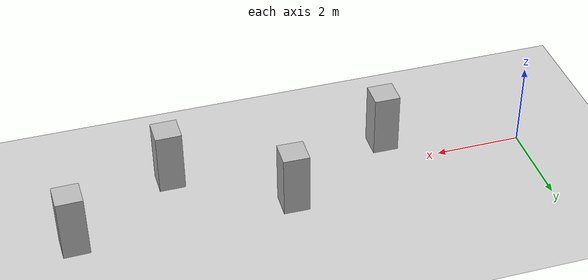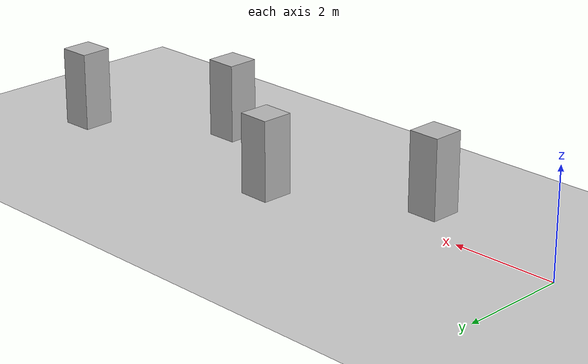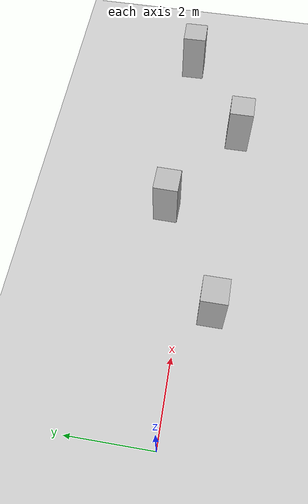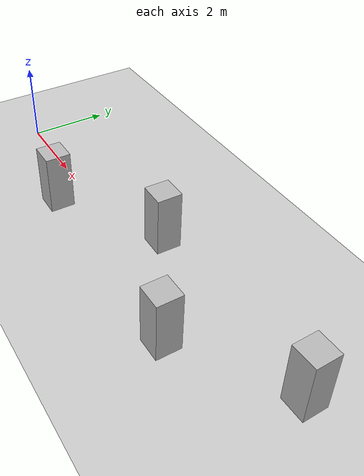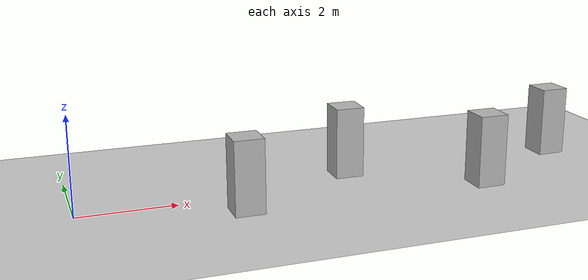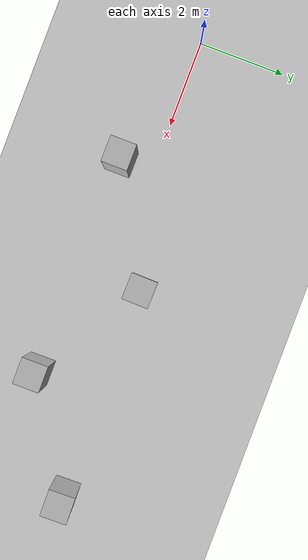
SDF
<?xml version="1.0"?>
<sdf version="1.6">
  <world name="v2-04g-r1-static-s4927">
    <gravity>0 0 -9.81</gravity>
    <physics name="v2_deterministic" type="ode">
      <max_step_size>0.002</max_step_size>
      <real_time_update_rate>500</real_time_update_rate>
    </physics>
    <include>
      <uri>model://sun</uri>
    </include>
    <include>
      <uri>model://ground_plane</uri>
    </include>
    <model name="pillar-1">
      <static>true</static>
      <pose>3.159469474 -0.754571876 0.750000000 0 0 -0.004565148</pose>
      <link name="link">
        <collision name="collision">
          <geometry>
            <box>
              <size>0.600000 0.600000 1.500000</size>
            </box>
          </geometry>
        </collision>
        <visual name="visual">
          <geometry>
            <box>
              <size>0.600000 0.600000 1.500000</size>
            </box>
          </geometry>
        </visual>
      </link>
    </model>
    <model name="pillar-2">
      <static>true</static>
      <pose>5.759427667 0.702923399 0.750000000 0 0 -0.019710874</pose>
      <link name="link">
        <collision name="collision">
          <geometry>
            <box>
              <size>0.600000 0.600000 1.500000</size>
            </box>
          </geometry>
        </collision>
        <visual name="visual">
          <geometry>
            <box>
              <size>0.600000 0.600000 1.500000</size>
            </box>
          </geometry>
        </visual>
      </link>
    </model>
    <model name="pillar-3">
      <static>true</static>
      <pose>8.273706144 -0.849597329 0.750000000 0 0 0.003267194</pose>
      <link name="link">
        <collision name="collision">
          <geometry>
            <box>
              <size>0.600000 0.600000 1.500000</size>
            </box>
          </geometry>
        </collision>
        <visual name="visual">
          <geometry>
            <box>
              <size>0.600000 0.600000 1.500000</size>
            </box>
          </geometry>
        </visual>
      </link>
    </model>
    <model name="pillar-4">
      <static>true</static>
      <pose>10.706924980 0.691237891 0.750000000 0 0 0.020201865</pose>
      <link name="link">
        <collision name="collision">
          <geometry>
            <box>
              <size>0.600000 0.600000 1.500000</size>
            </box>
          </geometry>
        </collision>
        <visual name="visual">
          <geometry>
            <box>
              <size>0.600000 0.600000 1.500000</size>
            </box>
          </geometry>
        </visual>
      </link>
    </model>
  </world>
</sdf>
